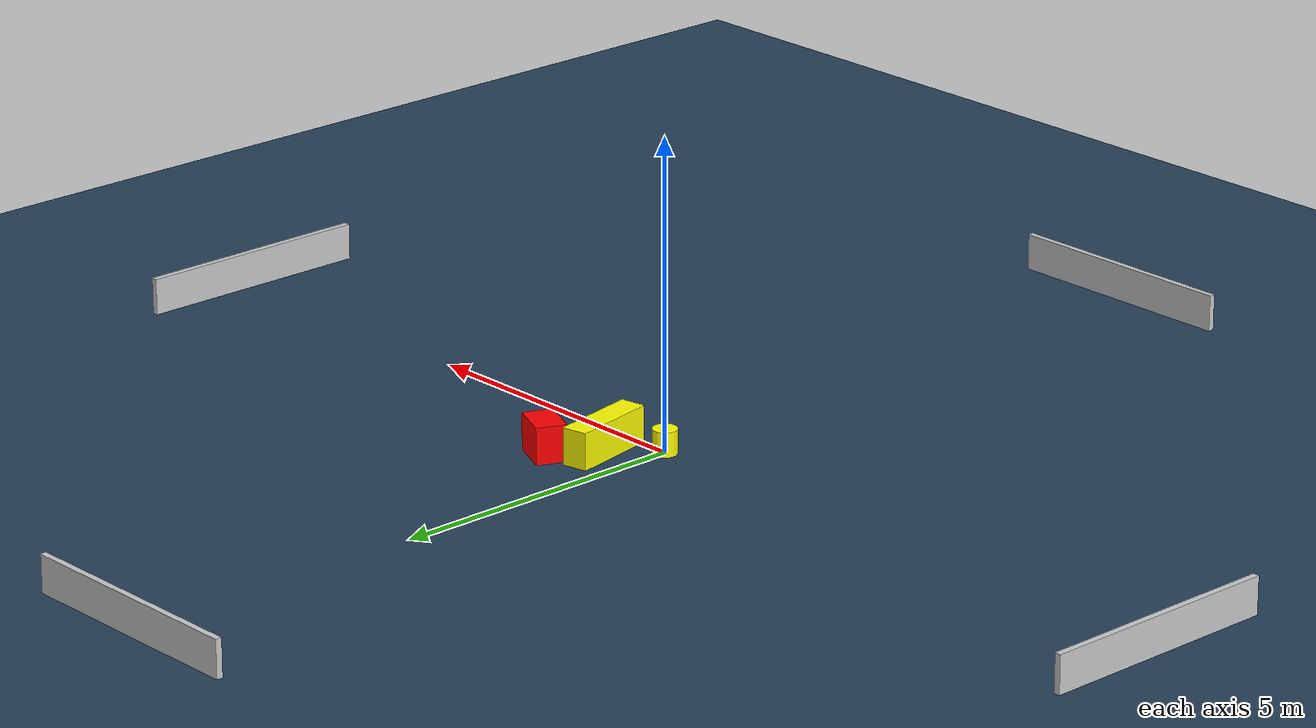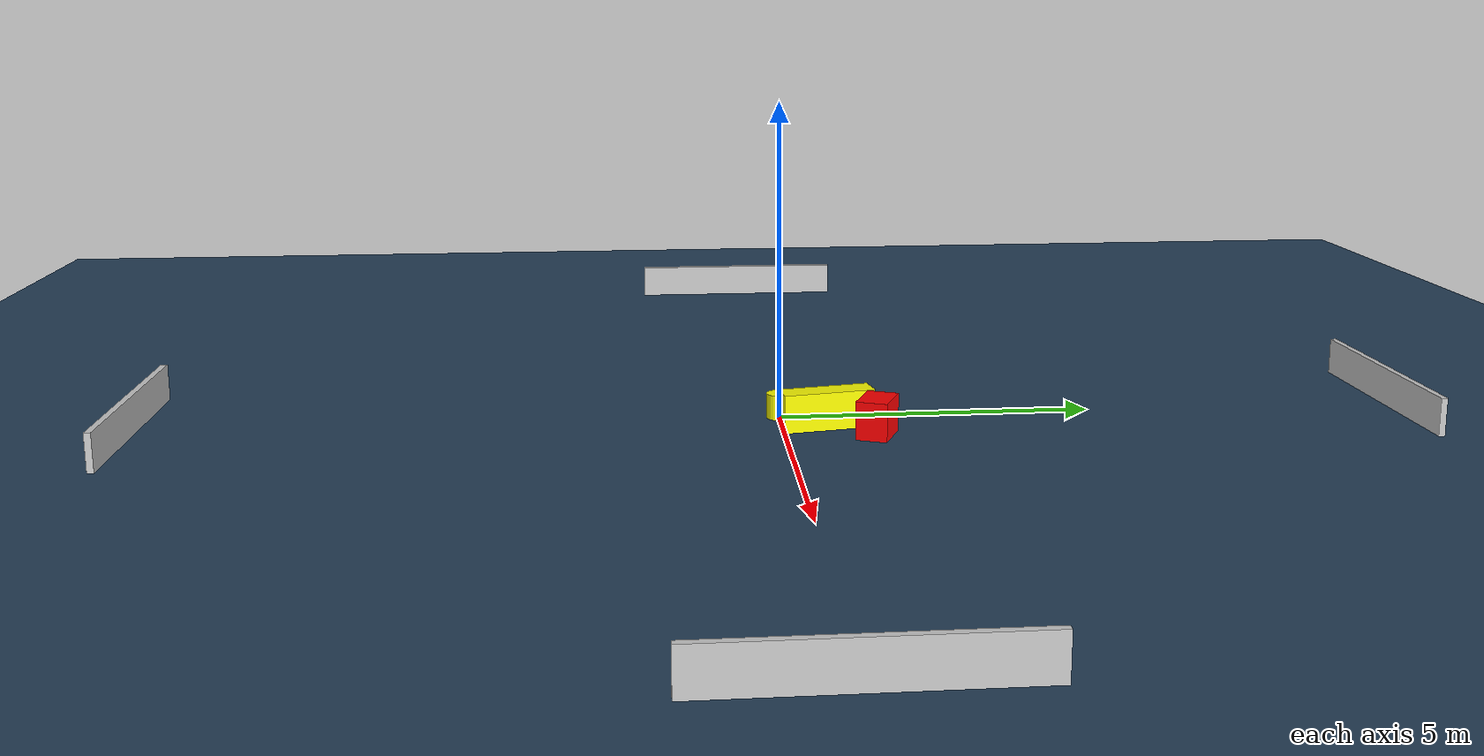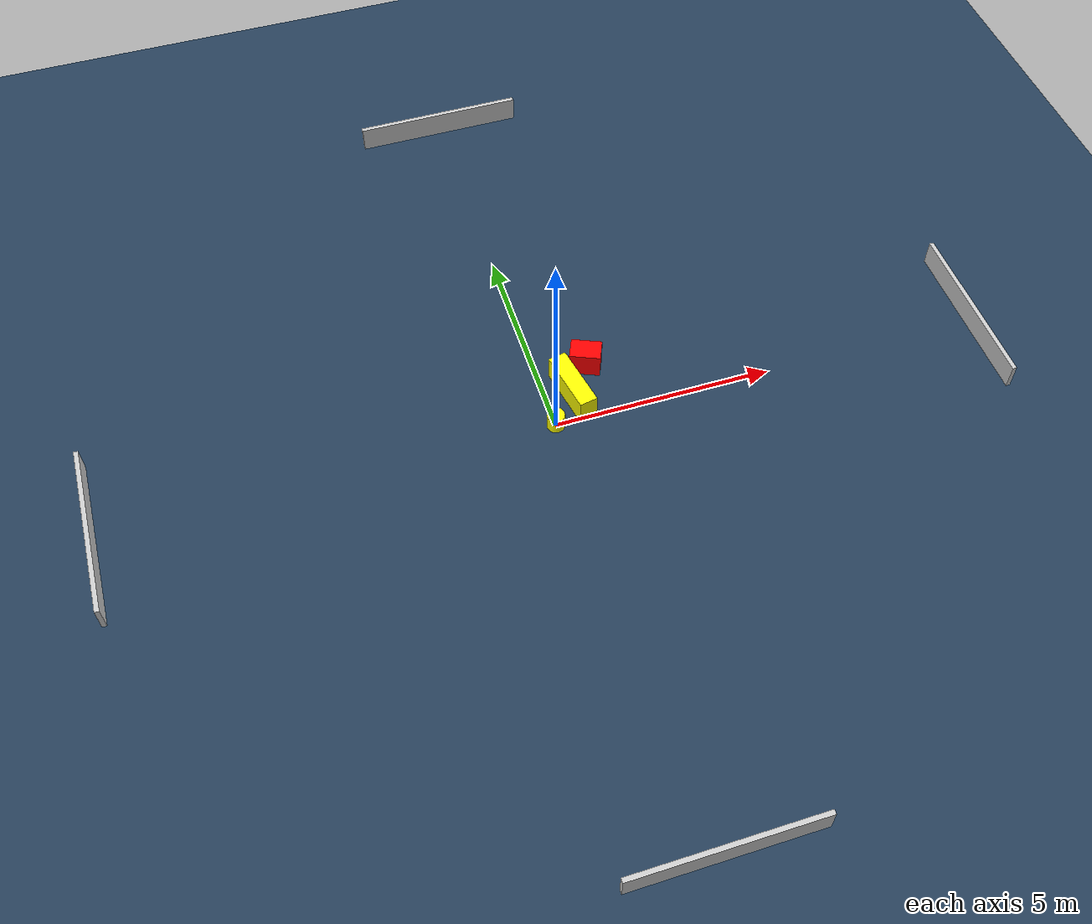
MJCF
<?xml version="1.0" ?>
<mujoco model="generated_environment">
  <option timestep="0.01" integrator="RK4" cone="elliptic"/>
  <default>
    <geom density="1"/>
  </default>
  <asset>
    <texture builtin="gradient" height="3072" name="skybox" rgb1="0.3 0.5 0.7" rgb2="0 0 0" type="skybox" width="512"/>
    <texture builtin="checker" height="300" name="groundplane" rgb1="0.2 0.3 0.4" rgb2="0.1 0.2 0.3" type="2d" width="300"/>
    <material name="groundplane" reflectance="0.2" texrepeat="5 5" texture="groundplane"/>
  </asset>
  <worldbody>
    <light dir="0 0 -1" directional="true" pos="0 0 1.5"/>
    <geom condim="3" friction="0.5 0.005 0.001" material="groundplane" name="floor" pos="0 0 0" size="0 0 0.05" type="plane"/>
    <body name="walls">
      <geom name="wall_1" condim="4" pos="-10.0 0.0 0.3" rgba="0.800000011920929 0.800000011920929 0.800000011920929 1.0" size="0.05 2.0 0.3" type="box"/>
      <geom name="wall_2" condim="4" pos="10.0 0.0 0.3" rgba="0.800000011920929 0.800000011920929 0.800000011920929 1.0" size="0.05 2.0 0.3" type="box"/>
      <geom name="wall_3" condim="4" pos="0.0 -10.0 0.3" rgba="0.800000011920929 0.800000011920929 0.800000011920929 1.0" size="2.0 0.05 0.3" type="box"/>
      <geom name="wall_4" condim="4" pos="0.0 10.0 0.3" rgba="0.800000011920929 0.800000011920929 0.800000011920929 1.0" size="2.0 0.05 0.3" type="box"/>
    </body>
    <body name="robot">
      <joint name="joint_x" type="slide" pos="0 0 0" axis="1 0 0"/>
      <joint name="joint_y" type="slide" pos="0 0 0" axis="0 1 0"/>
      <geom name="robot" type="cylinder" pos="0.0 0.0 0.2" size="0.2 0.2 0.0" mass="5.0" friction="1.0 0.005 0.0001" condim="4" rgba="1.0 1.0 0.0 1.0"/>
    </body>
    <body name="obstacle_1_movable">
      <geom name="obstacle_1_movable" condim="4" pos="0.6065611573170301 0.6866595025427751 0.3" euler="0 0 100.74677417931359" friction="0.0 0.005 0.001" rgba="1.0 1.0 0.0 1.0" size="0.7282099890287459 0.208798010224326 0.3" type="box" mass="0.1"/>
      <joint type="free"/>
    </body>
    <body name="obstacle_2_static">
      <geom name="obstacle_2_static" condim="4" pos="1.1441717483924445 1.401300043719009 0.3" euler="0 0 156.56756422090209" friction="0.0 0.005 0.001" rgba="1.0 0.0 0.0 1.0" size="0.3489607193281802 0.24640193704041677 0.3" type="box"/>
    </body>
  </worldbody>
  <actuator>
    <motor name="actuator_x" joint="joint_x" gear="1" ctrlrange="-1 1"/>
    <motor name="actuator_y" joint="joint_y" gear="1" ctrlrange="-1 1"/>
  </actuator>
</mujoco>
